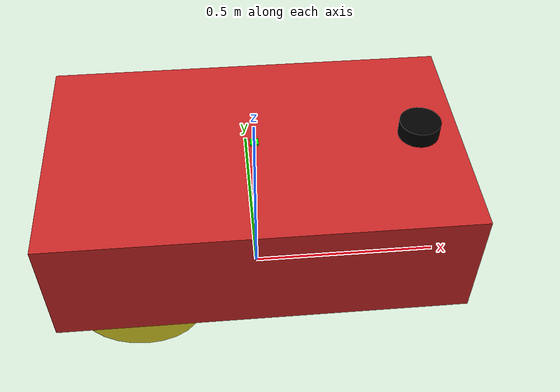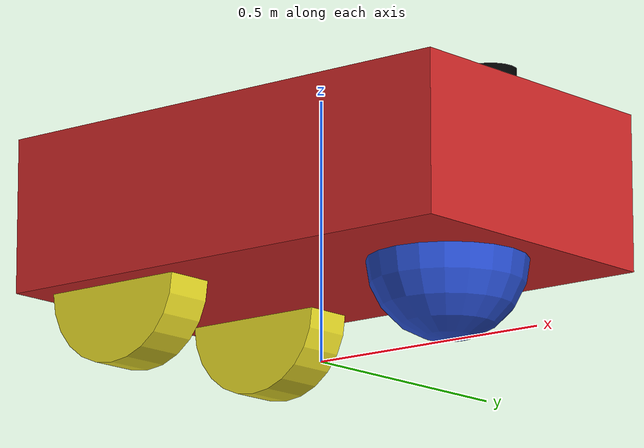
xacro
<?xml version="1.0"?>
<robot name="differential_drive_robot" xmlns:xacro="http://www.ros.org/wiki/xacro">

  <!-- Constants -->
  <xacro:property name="pi_const" value="3.14159265"/>

  <!-- Body Dimensions -->
  <xacro:property name="a" value="1"/>
  <xacro:property name="b" value="0.3"/>
  <xacro:property name="c" value="0.6"/>

  <!-- Wheel & caster radius and diameter -->
  <xacro:property name="r" value="0.15"/>
  <xacro:property name="d" value="0.1"/>

  <xacro:property name="s1" value="${b/2}"/>
  <xacro:property name="s2" value="${2*r}"/>
  <xacro:property name="s3" value="${c/2 + d/2}"/>
  <xacro:property name="s4" value="${2*r}"/>

  <!-- Density -->
  <xacro:property name="d1" value="2710.0"/>
  <xacro:property name="d2" value="2710.0"/>
  <xacro:property name="d3" value="2710.0"/>

  <!-- Mass -->
  <xacro:property name="m1" value="${d1*a*b*c}"/>
  <xacro:property name="m2" value="${d2*pi_const*r*r*d}"/>
  <xacro:property name="m3" value="${d3*(4.0/3.0)*pi_const*r*r*r}"/>

  <!-- Moment of Inertia - body -->
  <xacro:property name="Ix_body" value="${(1/12)*m1*(b*b+c*c)}"/>
  <xacro:property name="Iy_body" value="${(1/12)*m1*(a*a+b*b)}"/>
  <xacro:property name="Iz_body" value="${(1/12)*m1*(a*a+c*c)}"/>

  <!-- Moment of Inertia - wheel -->
  <xacro:property name="Iz_wheel" value="${0.5*m2*r*r}"/>
  <xacro:property name="I_wheel" value="${(1.0/12.0)*m2*(3.0*r*r + d*d)}"/>

  <!-- Moment of Inertia - caster -->
  <xacro:property name="I_caster" value="${(2.0/5.0)*m3*r*r}"/>

  <!-- Inertial Macros -->
  <xacro:macro name="inertia_body">
    <inertial>
      <origin rpy="0 0 0" xyz="0 0 0"/>
      <mass value="${m1}"/>
      <inertia ixx="${Ix_body}" ixy="0" ixz="0" iyy="${Iy_body}" iyz="0" izz="${Iz_body}"/>
    </inertial>
  </xacro:macro>

  <xacro:macro name="inertia_wheel">
    <inertial>
      <origin rpy="1.570795 0 0" xyz="0 0 0"/>
      <mass value="${m2}"/>
      <inertia ixx="${I_wheel}" ixy="0" ixz="0" iyy="${I_wheel}" iyz="0" izz="${Iz_wheel}"/>
    </inertial>
  </xacro:macro>

  <xacro:macro name="inertia_caster">
    <inertial>
      <origin rpy="0 0 0" xyz="0 0 0"/>
      <mass value="${m3}"/>
      <inertia ixx="${I_caster}" ixy="0" ixz="0" iyy="${I_caster}" iyz="0" izz="${I_caster}"/>
    </inertial>
  </xacro:macro>

  <!-- Sensor inertial macro -->
  <xacro:macro name="inertia_sensor" params="mass">
    <inertial>
      <origin rpy="0 0 0" xyz="0 0 0"/>
      <mass value="${mass}"/>
      <inertia ixx="${mass*0.01}" ixy="0" ixz="0" iyy="${mass*0.01}" iyz="0" izz="${mass*0.01}"/>
    </inertial>
  </xacro:macro>

  <!-- Base -->
  <link name="base_footprint"/>

  <!-- Base link for proper TF tree - positioned at wheel height -->
  <link name="base_link"/>

  <joint name="base_link_joint" type="fixed">
    <parent link="base_footprint"/>
    <child link="base_link"/>
    <origin xyz="0 0 ${r}" rpy="0 0 0"/>
  </joint>

  <!-- Body - positioned so bottom is at wheel height -->
  <link name="body_link">
    <visual>
      <geometry>
        <box size="${a} ${c} ${b}"/>
      </geometry>
      <origin xyz="0 0 ${s1}" rpy="0 0 0"/>
    </visual>
    <collision>
      <geometry>
        <box size="${a} ${c} ${b}"/>
      </geometry>
      <origin xyz="0 0 ${s1}" rpy="0 0 0"/>
    </collision>
    <xacro:inertia_body/>
  </link>

  <joint name="body_link_joint" type="fixed">
    <parent link="base_link"/>
    <child link="body_link"/>
    <origin xyz="0 0 0" rpy="0 0 0"/>
  </joint>

  <!-- Wheels - positioned at ground level (0 height relative to base_link) -->
  <link name="wheel1_link">
    <visual>
      <geometry>
        <cylinder radius="${r}" length="${d}"/>
      </geometry>
      <origin xyz="0 0 0" rpy="1.570795 0 0"/>
    </visual>
    <collision>
      <geometry>
        <cylinder radius="${r}" length="${d}"/>
      </geometry>
      <origin xyz="0 0 0" rpy="1.570795 0 0"/>
    </collision>
    <xacro:inertia_wheel/>
  </link>

  <link name="wheel2_link">
    <visual>
      <geometry>
        <cylinder radius="${r}" length="${d}"/>
      </geometry>
      <origin xyz="0 0 0" rpy="1.570795 0 0"/>
    </visual>
    <collision>
      <geometry>
        <cylinder radius="${r}" length="${d}"/>
      </geometry>
      <origin xyz="0 0 0" rpy="1.570795 0 0"/>
    </collision>
    <xacro:inertia_wheel/>
  </link>

  <joint name="wheel1_joint" type="continuous">
    <parent link="base_link"/>
    <child link="wheel1_link"/>
    <origin xyz="-0.3 -0.2 0" rpy="0 0 0"/>
    <axis xyz="0 1 0"/>
    <limit effort="500000" velocity="10" />
    <dynamics damping="1.0" friction="1.0" />
  </joint>

  <joint name="wheel2_joint" type="continuous">
    <parent link="base_link"/>
    <child link="wheel2_link"/>
    <origin xyz="-0.3 0.2 0" rpy="0 0 0"/>
    <axis xyz="0 1 0"/>
    <limit effort="500000" velocity="10" />
    <dynamics damping="1.0" friction="1.0" />
  </joint>

  <!-- Caster - positioned at ground level -->
  <link name="caster_link">
    <visual>
      <geometry>
        <sphere radius="${r}"/>
      </geometry>
    </visual>
    <collision>
      <geometry>
        <sphere radius="${r}"/>
      </geometry>
    </collision>
    <xacro:inertia_caster/>
  </link>

  <joint name="caster_joint" type="fixed">
    <parent link="base_link"/>
    <child link="caster_link"/>
    <origin xyz="0.3 0 0" rpy="0 0 0"/>
  </joint>

  <!-- LiDAR Sensor -->
  <link name="laser_link">
    <visual>
      <geometry>
        <cylinder radius="0.05" length="0.04"/>
      </geometry>
      <origin xyz="0 0 0" rpy="0 0 0"/>
      <material name="black">
        <color rgba="0 0 0 1"/>
      </material>
    </visual>
    <collision>
      <geometry>
        <cylinder radius="0.05" length="0.04"/>
      </geometry>
      <origin xyz="0 0 0" rpy="0 0 0"/>
    </collision>
    <xacro:inertia_sensor mass="0.1"/>
  </link>

  <joint name="laser_joint" type="fixed">
    <parent link="body_link"/>
    <child link="laser_link"/>
    <origin xyz="0.4 0 ${s1 + b/2 + 0.02}" rpy="0 0 0"/>
  </joint>

  <!-- Camera Link -->
  <link name="camera_link">
    <visual>
      <geometry>
        <box size="0.05 0.08 0.03"/>
      </geometry>
      <origin xyz="0 0 0" rpy="0 0 0"/>
      <material name="blue">
        <color rgba="0 0 1 1"/>
      </material>
    </visual>
    <collision>
      <geometry>
        <box size="0.05 0.08 0.03"/>
      </geometry>
      <origin xyz="0 0 0" rpy="0 0 0"/>
    </collision>
    <xacro:inertia_sensor mass="0.05"/>
  </link>

  <joint name="camera_joint" type="fixed">
    <parent link="body_link"/>
    <child link="camera_link"/>
    <origin xyz="0.45 0 ${s1 + b/2 - 0.1}" rpy="0 0 0"/>
  </joint>

  <!-- Camera Optical Frame (for proper image orientation) -->
  <link name="camera_optical_link"/>

  <joint name="camera_optical_joint" type="fixed">
    <parent link="camera_link"/>
    <child link="camera_optical_link"/>
    <origin xyz="0 0 0" rpy="-1.570795 0 -1.570795"/>
  </joint>

  <!-- IMU Sensor Link -->
  <link name="imu_link">
    <visual>
      <geometry>
        <box size="0.02 0.02 0.01"/>
      </geometry>
      <origin xyz="0 0 0" rpy="0 0 0"/>
      <material name="green">
        <color rgba="0 1 0 1"/>
      </material>
    </visual>
    <collision>
      <geometry>
        <box size="0.02 0.02 0.01"/>
      </geometry>
      <origin xyz="0 0 0" rpy="0 0 0"/>
    </collision>
    <xacro:inertia_sensor mass="0.01"/>
  </link>

  <joint name="imu_joint" type="fixed">
    <parent link="body_link"/>
    <child link="imu_link"/>
    <origin xyz="0 0 ${s1 + b/2}" rpy="0 0 0"/>
  </joint>

  <!-- Gazebo friction / visuals for main links -->
  <gazebo reference="body_link">
    <mu1>0.2</mu1>
    <mu2>0.2</mu2>
    <material>Gazebo/Red</material>
  </gazebo>

  <gazebo reference="wheel1_link">
    <mu1>1.0</mu1>
    <mu2>1.0</mu2>
    <material>Gazebo/Yellow</material>
  </gazebo>

  <gazebo reference="wheel2_link">
    <mu1>1.0</mu1>
    <mu2>1.0</mu2>
    <material>Gazebo/Yellow</material>
  </gazebo>

  <gazebo reference="caster_link">
    <mu1>0.0</mu1>
    <mu2>0.0</mu2>
    <material>Gazebo/Blue</material>
  </gazebo>

  <gazebo reference="laser_link">
    <material>Gazebo/Black</material>
  </gazebo>

  <gazebo reference="camera_link">
    <material>Gazebo/Blue</material>
  </gazebo>

  <gazebo reference="imu_link">
    <material>Gazebo/Green</material>
  </gazebo>

  <!-- Differential drive plugin -->
  <gazebo>
    <plugin name="differential_drive_controller" filename="libgazebo_ros_diff_drive.so">
      <ros>
        <namespace>/</namespace>
        <remapping>cmd_vel:=cmd_vel</remapping>
        <remapping>odom:=wheel_odom</remapping>
      </ros>

      <update_rate>50</update_rate>

      <!-- Correct joint tags -->
      <left_joint>wheel1_joint</left_joint>
      <right_joint>wheel2_joint</right_joint>

      <!-- Kinematics -->
      <wheel_separation>0.4</wheel_separation>
      <wheel_diameter>0.3</wheel_diameter>

      <max_wheel_torque>200</max_wheel_torque>
      <max_wheel_acceleration>10.0</max_wheel_acceleration>

      <publish_odom>true</publish_odom>
      <publish_odom_tf>false</publish_odom_tf>
      <publish_wheel_tf>false</publish_wheel_tf>

      <odometry_frame>odom</odometry_frame>
      <robot_base_frame>base_link</robot_base_frame>
    </plugin>
  </gazebo>

  <!-- LiDAR Plugin -->
  <gazebo reference="laser_link">
    <sensor type="ray" name="laser_scanner">
      <pose>0 0 0 0 0 0</pose>
      <visualize>true</visualize>
      <update_rate>10</update_rate>
      <ray>
        <scan>
          <horizontal>
            <samples>360</samples>
            <resolution>1</resolution>
            <min_angle>-3.14159</min_angle>
            <max_angle>3.14159</max_angle>
          </horizontal>
        </scan>
        <range>
          <min>0.10</min>
          <max>10.0</max>
          <resolution>0.01</resolution>
        </range>
        <noise>
          <type>gaussian</type>
          <mean>0.0</mean>
          <stddev>0.01</stddev>
        </noise>
      </ray>
      <plugin name="gazebo_ros_laser" filename="libgazebo_ros_ray_sensor.so">
        <ros>
          <remapping>~/out:=scan</remapping>
        </ros>
        <output_type>sensor_msgs/LaserScan</output_type>
        <frame_name>laser_link</frame_name>
      </plugin>
    </sensor>
  </gazebo>

  <!-- Camera Plugin -->
  <gazebo reference="camera_link">
    <sensor type="camera" name="camera">
      <update_rate>30.0</update_rate>
      <camera name="head">
        <horizontal_fov>1.3962634</horizontal_fov>
        <image>
          <width>640</width>
          <height>480</height>
          <format>R8G8B8</format>
        </image>
        <clip>
          <near>0.02</near>
          <far>300</far>
        </clip>
        <noise>
          <type>gaussian</type>
          <mean>0.0</mean>
          <stddev>0.007</stddev>
        </noise>
      </camera>
      <plugin name="camera_controller" filename="libgazebo_ros_camera.so">
        <ros>
          <remapping>image_raw:=camera/image_raw</remapping>
          <remapping>camera_info:=camera/camera_info</remapping>
        </ros>
        <camera_name>camera</camera_name>
        <frame_name>camera_optical_link</frame_name>
        <hack_baseline>0.07</hack_baseline>
      </plugin>
    </sensor>
  </gazebo>

  <!-- IMU Plugin -->
  <gazebo reference="imu_link">
    <sensor name="imu_sensor" type="imu">
      <plugin filename="libgazebo_ros_imu_sensor.so" name="imu_plugin">
        <ros>
          <remapping>~/out:=imu/data</remapping>
        </ros>
        <initial_orientation_as_reference>false</initial_orientation_as_reference>
      </plugin>
      <always_on>true</always_on>
      <update_rate>100</update_rate>
      <visualize>true</visualize>
      <imu>
        <angular_velocity>
          <x>
            <noise type="gaussian">
              <mean>0.0</mean>
              <stddev>2e-4</stddev>
              <bias_mean>0.0000075</bias_mean>
              <bias_stddev>0.0000008</bias_stddev>
            </noise>
          </x>
          <y>
            <noise type="gaussian">
              <mean>0.0</mean>
              <stddev>2e-4</stddev>
              <bias_mean>0.0000075</bias_mean>
              <bias_stddev>0.0000008</bias_stddev>
            </noise>
          </y>
          <z>
            <noise type="gaussian">
              <mean>0.0</mean>
              <stddev>2e-4</stddev>
              <bias_mean>0.0000075</bias_mean>
              <bias_stddev>0.0000008</bias_stddev>
            </noise>
          </z>
        </angular_velocity>
        <linear_acceleration>
          <x>
            <noise type="gaussian">
              <mean>0.0</mean>
              <stddev>1.7e-2</stddev>
              <bias_mean>0.1</bias_mean>
              <bias_stddev>0.001</bias_stddev>
            </noise>
          </x>
          <y>
            <noise type="gaussian">
              <mean>0.0</mean>
              <stddev>1.7e-2</stddev>
              <bias_mean>0.1</bias_mean>
              <bias_stddev>0.001</bias_stddev>
            </noise>
          </y>
          <z>
            <noise type="gaussian">
              <mean>0.0</mean>
              <stddev>1.7e-2</stddev>
              <bias_mean>0.1</bias_mean>
              <bias_stddev>0.001</bias_stddev>
            </noise>
          </z>
        </linear_acceleration>
      </imu>
    </sensor>
  </gazebo>

</robot>
<!-- rm -rf build/ install/ log/
colcon build
source install/setup.bash
ros2 launch mobile_robot gazebo_model.launch.py  -->
